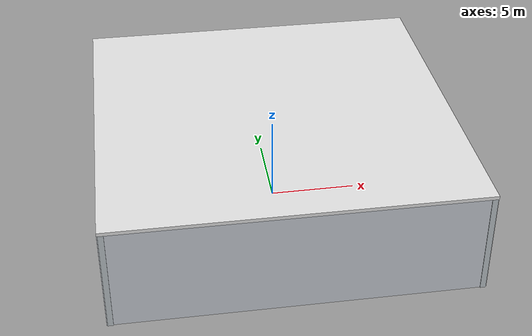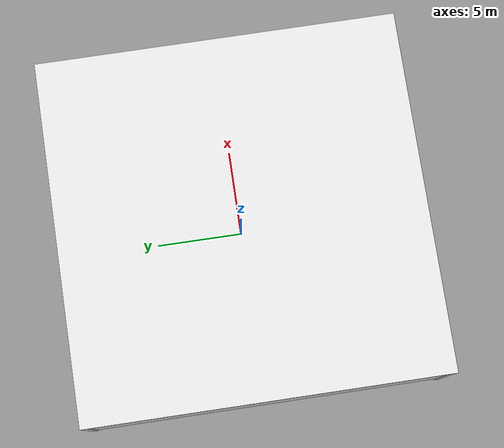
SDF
<?xml version="1.0" encoding="UTF-8"?>
<sdf version="1.9">
  <world name="buyuk_ev">
    <plugin filename="gz-sim-physics-system" name="gz::sim::systems::Physics"/>
    <plugin filename="gz-sim-user-commands-system" name="gz::sim::systems::UserCommands"/>
    <plugin filename="gz-sim-scene-broadcaster-system" name="gz::sim::systems::SceneBroadcaster"/>
    <plugin filename="gz-sim-contact-system" name="gz::sim::systems::Contact"/>
    <plugin filename="gz-sim-imu-system" name="gz::sim::systems::Imu"/>
    <plugin filename="gz-sim-air-pressure-system" name="gz::sim::systems::AirPressure"/>
    <plugin filename="gz-sim-air-speed-system" name="gz::sim::systems::AirSpeed"/>
    <plugin filename="gz-sim-apply-link-wrench-system" name="gz::sim::systems::ApplyLinkWrench"/>
    <plugin filename="gz-sim-navsat-system" name="gz::sim::systems::NavSat"/>
    <plugin filename="gz-sim-magnetometer-system" name="gz::sim::systems::Magnetometer"/>
    <plugin filename="gz-sim-sensors-system" name="gz::sim::systems::Sensors">
      <render_engine>ogre2</render_engine>
    </plugin>

    <physics name="default_physics" default="0" type="ode">
      <max_step_size>0.004</max_step_size>
      <real_time_factor>1.0</real_time_factor>
      <real_time_update_rate>250</real_time_update_rate>
    </physics>
    <gravity>0 0 -9.8</gravity>
    <magnetic_field>6e-06 2.3e-05 -4.2e-05</magnetic_field>
    <atmosphere type="adiabatic"/>
    <scene>
      <grid>false</grid>
      <ambient>0.85 0.85 0.85 1</ambient>
      <background>0.1 0.1 0.1 1</background>
      <shadows>false</shadows>
    </scene>
    <spherical_coordinates>
      <surface_model>EARTH_WGS84</surface_model>
      <latitude_deg>47.397971057728974</latitude_deg>
      <longitude_deg>8.546163739800146</longitude_deg>
      <elevation>0</elevation>
      <heading_deg>0</heading_deg>
    </spherical_coordinates>

    <!-- İç Mekan Ana Tavan Aydınlatması (Homojen, Gölgesiz, Yüksek FPS) -->
    <light name="center_light" type="point">
      <cast_shadows>false</cast_shadows>
      <pose>0 0 5.5 0 0 0</pose>
      <diffuse>0.9 0.9 0.85 1</diffuse>
      <specular>0.2 0.2 0.2 1</specular>
      <attenuation>
        <range>40</range>
        <constant>0.8</constant>
        <linear>0.02</linear>
        <quadratic>0.001</quadratic>
      </attenuation>
    </light>

    <light name="north_light" type="point">
      <cast_shadows>false</cast_shadows>
      <pose>0 5 5.5 0 0 0</pose>
      <diffuse>0.8 0.8 0.8 1</diffuse>
      <specular>0.1 0.1 0.1 1</specular>
      <attenuation>
        <range>30</range>
        <constant>0.8</constant>
        <linear>0.03</linear>
        <quadratic>0.002</quadratic>
      </attenuation>
    </light>

    <light name="south_light" type="point">
      <cast_shadows>false</cast_shadows>
      <pose>0 -5 5.5 0 0 0</pose>
      <diffuse>0.8 0.8 0.8 1</diffuse>
      <specular>0.1 0.1 0.1 1</specular>
      <attenuation>
        <range>30</range>
        <constant>0.8</constant>
        <linear>0.03</linear>
        <quadratic>0.002</quadratic>
      </attenuation>
    </light>

    <!-- 🏢 ZEMİN (20m x 20m Tamamen Kapalı Parke/Fayans Doku, Sıfır Dış Alan) -->
    <model name="oda_zemini">
      <static>true</static>
      <pose>0 0 0 0 0 0</pose>
      <link name="link">
        <collision name="collision">
          <geometry>
            <plane><normal>0 0 1</normal><size>20 20</size></plane>
          </geometry>
          <surface>
            <friction>
              <ode>
                <mu>100</mu>
                <mu2>50</mu2>
              </ode>
            </friction>
          </surface>
        </collision>
        <visual name="visual">
          <geometry>
            <plane><normal>0 0 1</normal><size>20 20</size></plane>
          </geometry>
          <material>
            <ambient>0.65 0.50 0.35 1</ambient>
            <diffuse>0.75 0.58 0.40 1</diffuse>
            <specular>0.1 0.1 0.1 1</specular>
          </material>
        </visual>
      </link>
    </model>

    <!-- 🏠 YÜKSEK TAVAN / ÇATI (6.0 Metre Yükseklik - Ferah Uçuş Alanı) -->
    <model name="oda_tavani">
      <static>true</static>
      <pose>0 0 6.0 0 0 0</pose>
      <link name="link">
        <collision name="collision">
          <geometry><box><size>20.4 20.4 0.2</size></box></geometry>
        </collision>
        <visual name="visual">
          <geometry><box><size>20.4 20.4 0.2</size></box></geometry>
          <material>
            <ambient>0.85 0.85 0.85 1</ambient>
            <diffuse>0.90 0.90 0.90 1</diffuse>
            <specular>0.1 0.1 0.1 1</specular>
          </material>
        </visual>
      </link>
    </model>

    <!-- 🧱 DIŞ DUVARLAR (4 Tarafı Tamamen Kapalı, 6.0m Yüksek, 20m Uzun) -->
    <model name="dis_duvarlar">
      <static>true</static>
      <pose>0 0 3.0 0 0 0</pose>

      <!-- Kuzey Duvarı (Arka) -->
      <link name="duvar_kuzey">
        <pose>0 10 0 0 0 0</pose>
        <collision name="c"><geometry><box><size>20.4 0.3 6.0</size></box></geometry></collision>
        <visual name="v">
          <geometry><box><size>20.4 0.3 6.0</size></box></geometry>
          <material>
            <ambient>0.70 0.72 0.75 1</ambient>
            <diffuse>0.80 0.82 0.85 1</diffuse>
            <specular>0.1 0.1 0.1 1</specular>
          </material>
        </visual>
      </link>

      <!-- Güney Duvarı (Ön - Tamamen Kapalı, Dışarısı Yok) -->
      <link name="duvar_guney">
        <pose>0 -10 0 0 0 0</pose>
        <collision name="c"><geometry><box><size>20.4 0.3 6.0</size></box></geometry></collision>
        <visual name="v">
          <geometry><box><size>20.4 0.3 6.0</size></box></geometry>
          <material>
            <ambient>0.70 0.72 0.75 1</ambient>
            <diffuse>0.80 0.82 0.85 1</diffuse>
            <specular>0.1 0.1 0.1 1</specular>
          </material>
        </visual>
      </link>

      <!-- Doğu Duvarı (Sağ) -->
      <link name="duvar_dogu">
        <pose>10 0 0 0 0 0</pose>
        <collision name="c"><geometry><box><size>0.3 20.4 6.0</size></box></geometry></collision>
        <visual name="v">
          <geometry><box><size>0.3 20.4 6.0</size></box></geometry>
          <material>
            <ambient>0.65 0.68 0.70 1</ambient>
            <diffuse>0.75 0.78 0.80 1</diffuse>
            <specular>0.1 0.1 0.1 1</specular>
          </material>
        </visual>
      </link>

      <!-- Batı Duvarı (Sol) -->
      <link name="duvar_bati">
        <pose>-10 0 0 0 0 0</pose>
        <collision name="c"><geometry><box><size>0.3 20.4 6.0</size></box></geometry></collision>
        <visual name="v">
          <geometry><box><size>0.3 20.4 6.0</size></box></geometry>
          <material>
            <ambient>0.65 0.68 0.70 1</ambient>
            <diffuse>0.75 0.78 0.80 1</diffuse>
            <specular>0.1 0.1 0.1 1</specular>
          </material>
        </visual>
      </link>
    </model>

    <!-- 🏛️ TEK BÜYÜK AÇIK ODA (Bölme Duvarlar ve Kapı Boşlukları Kaldırıldı) -->
    <model name="oda_kolonlari">
      <static>true</static>
      <pose>0 0 3.0 0 0 0</pose>

      <!-- Dikey Sütun / Kolon 1 (LiDAR & VIO için Güçlü Özellik Noktaları) -->
      <link name="kolon_1">
        <pose>-4.0 -4.5 0 0 0 0</pose>
        <collision name="c"><geometry><box><size>0.8 0.8 6.0</size></box></geometry></collision>
        <visual name="v">
          <geometry><box><size>0.8 0.8 6.0</size></box></geometry>
          <material>
            <ambient>0.4 0.45 0.5 1</ambient>
            <diffuse>0.5 0.55 0.6 1</diffuse>
          </material>
        </visual>
      </link>

      <!-- Dikey Sütun / Kolon 2 -->
      <link name="kolon_2">
        <pose>4.0 -4.5 0 0 0 0</pose>
        <collision name="c"><geometry><box><size>0.8 0.8 6.0</size></box></geometry></collision>
        <visual name="v">
          <geometry><box><size>0.8 0.8 6.0</size></box></geometry>
          <material>
            <ambient>0.4 0.45 0.5 1</ambient>
            <diffuse>0.5 0.55 0.6 1</diffuse>
          </material>
        </visual>
      </link>

      <!-- Dikey Sütun / Kolon 3 (Kuzey Odası) -->
      <link name="kolon_3">
        <pose>-4.0 5.0 0 0 0 0</pose>
        <collision name="c"><geometry><box><size>0.8 0.8 6.0</size></box></geometry></collision>
        <visual name="v">
          <geometry><box><size>0.8 0.8 6.0</size></box></geometry>
          <material>
            <ambient>0.4 0.45 0.5 1</ambient>
            <diffuse>0.5 0.55 0.6 1</diffuse>
          </material>
        </visual>
      </link>

      <!-- Dikey Sütun / Kolon 4 (Kuzey Odası) -->
      <link name="kolon_4">
        <pose>4.0 5.0 0 0 0 0</pose>
        <collision name="c"><geometry><box><size>0.8 0.8 6.0</size></box></geometry></collision>
        <visual name="v">
          <geometry><box><size>0.8 0.8 6.0</size></box></geometry>
          <material>
            <ambient>0.4 0.45 0.5 1</ambient>
            <diffuse>0.5 0.55 0.6 1</diffuse>
          </material>
        </visual>
      </link>
    </model>

    <!-- 🛋️ İÇ MEKAN EŞYALARI & ENGELLER (3DGS Haritalama ve LiDAR için Zengin Nesneler) -->

    <!-- Büyük Salon Halısı (Dronun altında kontrast doku oluşturur) -->
    <model name="salon_halisi">
      <static>true</static>
      <pose>0 -4.5 0.005 0 0 0</pose>
      <link name="link">
        <visual name="v">
          <geometry><box><size>6.0 5.0 0.01</size></box></geometry>
          <material>
            <ambient>0.15 0.35 0.55 1</ambient>
            <diffuse>0.20 0.45 0.70 1</diffuse>
          </material>
        </visual>
      </link>
    </model>

    <!-- Büyük L-Koltuk Grubu -->
    <model name="l_koltuk">
      <static>true</static>
      <pose>-2.0 -6.5 0.45 0 0 0</pose>
      <link name="ana_kisim">
        <collision name="c"><geometry><box><size>3.5 1.0 0.9</size></box></geometry></collision>
        <visual name="v">
          <geometry><box><size>3.5 1.0 0.9</size></box></geometry>
          <material><ambient>0.25 0.25 0.28 1</ambient><diffuse>0.35 0.35 0.38 1</diffuse></material>
        </visual>
      </link>
      <link name="yan_kisim">
        <pose>1.25 1.25 0 0 0 0</pose>
        <collision name="c"><geometry><box><size>1.0 1.5 0.9</size></box></geometry></collision>
        <visual name="v">
          <geometry><box><size>1.0 1.5 0.9</size></box></geometry>
          <material><ambient>0.25 0.25 0.28 1</ambient><diffuse>0.35 0.35 0.38 1</diffuse></material>
        </visual>
      </link>
    </model>

    <!-- Sehpa / Orta Masa -->
    <model name="orta_sehpa">
      <static>true</static>
      <pose>-0.5 -4.5 0.25 0 0 0</pose>
      <link name="link">
        <collision name="c"><geometry><box><size>1.8 1.0 0.5</size></box></geometry></collision>
        <visual name="v">
          <geometry><box><size>1.8 1.0 0.5</size></box></geometry>
          <material><ambient>0.5 0.3 0.15 1</ambient><diffuse>0.6 0.35 0.2 1</diffuse></material>
        </visual>
      </link>
    </model>

    <!-- TV Ünitesi & Kitaplık Duvarı -->
    <model name="tv_unitesi">
      <static>true</static>
      <pose>0 -9.6 1.0 0 0 0</pose>
      <link name="link">
        <collision name="c"><geometry><box><size>4.0 0.5 2.0</size></box></geometry></collision>
        <visual name="v">
          <geometry><box><size>4.0 0.5 2.0</size></box></geometry>
          <material><ambient>0.2 0.2 0.2 1</ambient><diffuse>0.25 0.25 0.25 1</diffuse></material>
        </visual>
      </link>
    </model>

    <!-- Arka Oda (Laboratuvar / Atölye Masaları ve Kutular) -->
    <model name="lab_masasi">
      <static>true</static>
      <pose>0 6.0 0.45 0 0 0</pose>
      <link name="link">
        <collision name="c"><geometry><box><size>4.5 1.5 0.9</size></box></geometry></collision>
        <visual name="v">
          <geometry><box><size>4.5 1.5 0.9</size></box></geometry>
          <material><ambient>0.7 0.7 0.75 1</ambient><diffuse>0.8 0.8 0.85 1</diffuse></material>
        </visual>
      </link>
    </model>

    <!-- Depolama Rafları ve Kutular (Kuzey Duvarı Önü) -->
    <model name="depo_raflari">
      <static>true</static>
      <pose>-6.0 8.5 1.5 0 0 0</pose>
      <link name="raf1">
        <collision name="c"><geometry><box><size>4.0 0.8 3.0</size></box></geometry></collision>
        <visual name="v">
          <geometry><box><size>4.0 0.8 3.0</size></box></geometry>
          <material><ambient>0.3 0.35 0.4 1</ambient><diffuse>0.35 0.4 0.45 1</diffuse></material>
        </visual>
      </link>
    </model>

    <model name="kutu_yigini">
      <static>true</static>
      <pose>6.0 7.5 0.6 0 0 0.3</pose>
      <link name="kutu1">
        <collision name="c"><geometry><box><size>1.2 1.2 1.2</size></box></geometry></collision>
        <visual name="v">
          <geometry><box><size>1.2 1.2 1.2</size></box></geometry>
          <material><ambient>0.6 0.45 0.25 1</ambient><diffuse>0.7 0.5 0.3 1</diffuse></material>
        </visual>
      </link>
    </model>

    <gui fullscreen="0">
      <camera name="user_camera">
        <pose>0 -8.5 4.5 0 0.35 1.57</pose>
        <view_controller>orbit</view_controller>
      </camera>
    </gui>

  </world>
</sdf>
